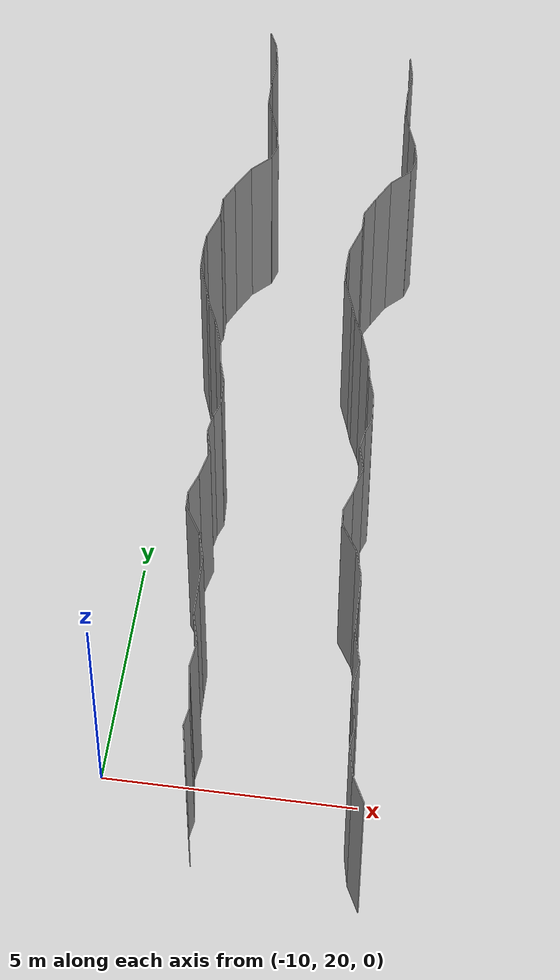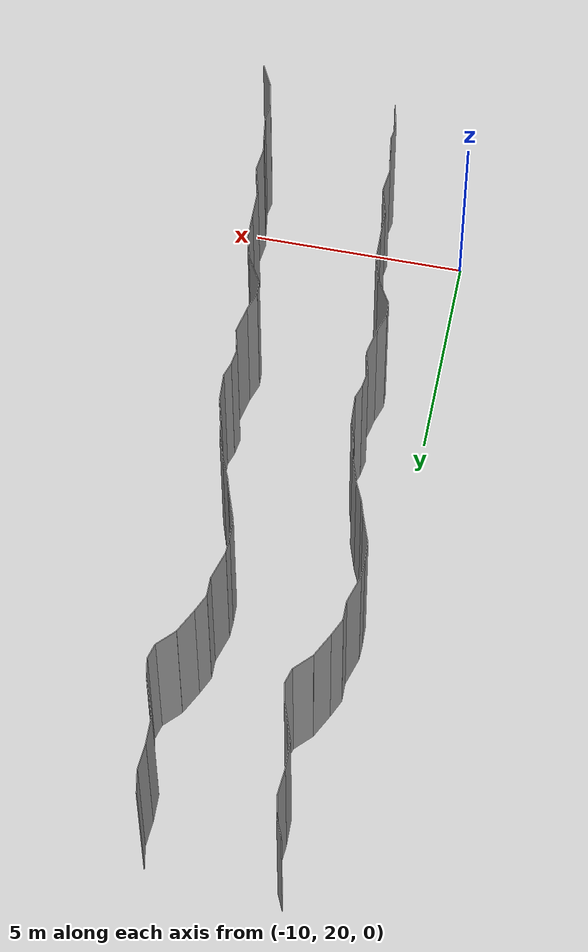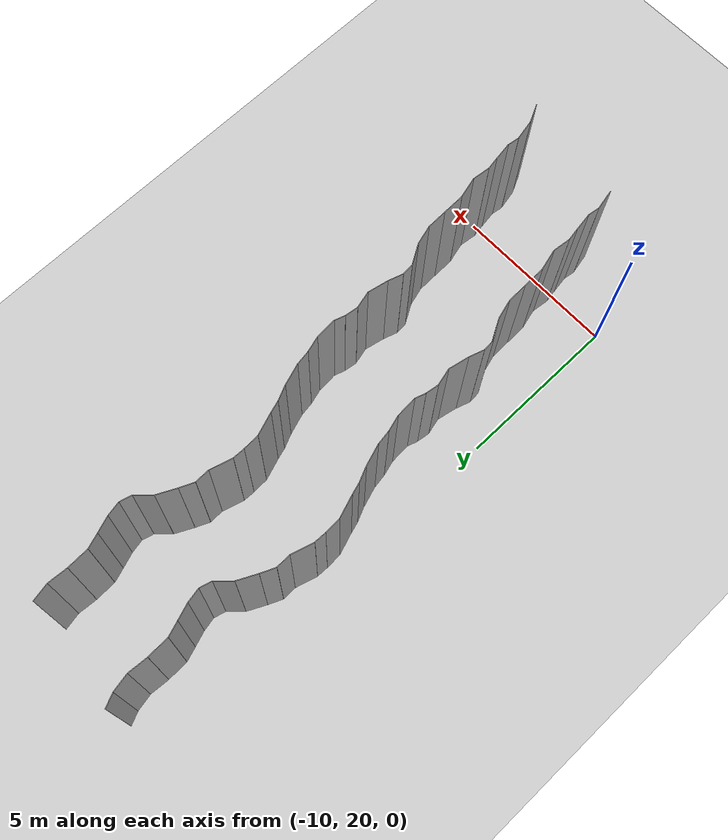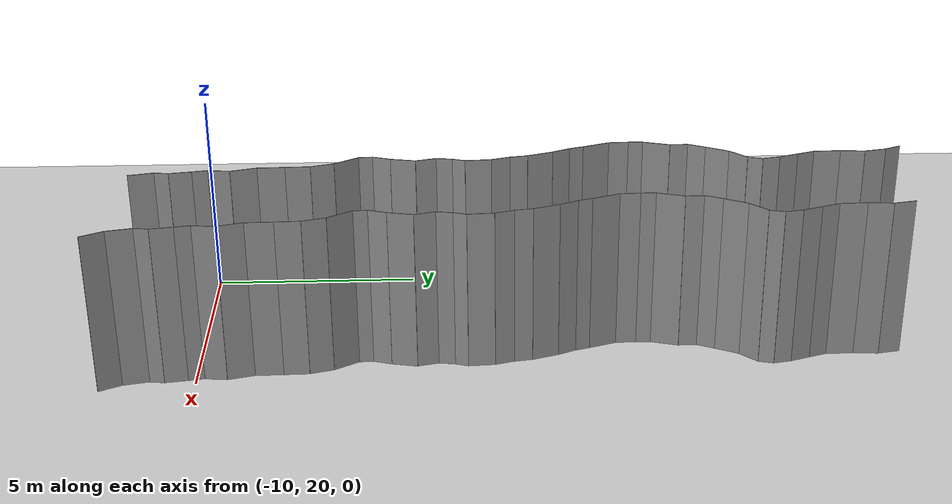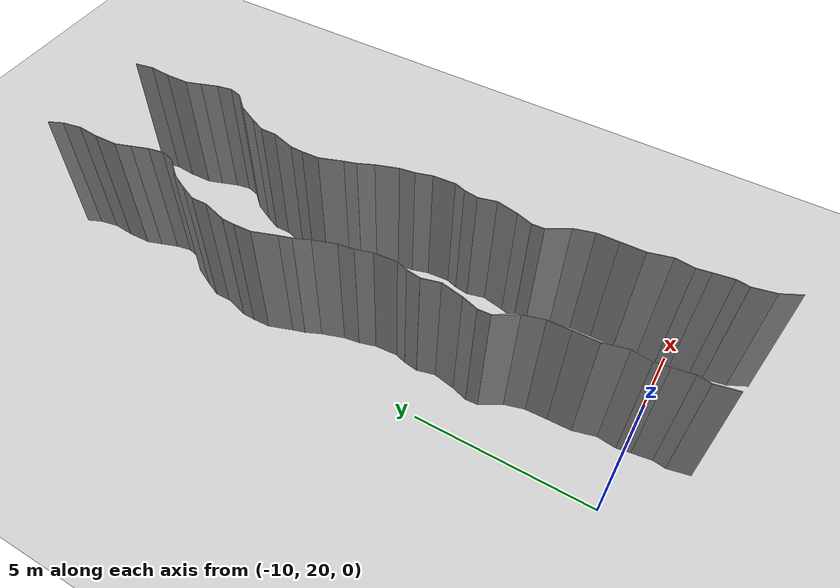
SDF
<sdf version="1.6">
 <world name="default">
  <model name="ground_plane">
   <static>1</static>
   <link name="link">
    <collision name="collision">
     <geometry><plane><normal>0 0 1</normal><size>200 200</size></plane></geometry>
     <surface><friction><ode><mu>100</mu><mu2>50</mu2></ode></friction></surface>
    </collision>
    <visual name="visual">
     <cast_shadows>0</cast_shadows>
     <geometry><plane><normal>0 0 1</normal><size>200 200</size></plane></geometry>
     <material>
      <script><uri>file://media/materials/scripts/gazebo.material</uri><name>Gazebo/Grey</name></script>
     </material>
    </visual>
   </link>
   <pose>0 100 0 0 -0 0</pose>
  </model>
  <model name="wall_73">
   <static>1</static>
   <pose>-4.859079595083798 18.051267998944404 2 0 0 0.46387960950541135</pose>
   <link name="link">
    <collision name="collision"><geometry><box><size>0.02 0.588464808912 4</size></box></geometry></collision>
    <visual name="visual">
     <material>
      <script><name>Gazebo/Grey</name><uri>file://media/materials/scripts/gazebo.material</uri></script>
     </material>
     <geometry><box><size>0.02 0.588464808912 4</size></box></geometry>
    </visual>
   </link>
  </model>
  <model name="wall_74">
   <static>1</static>
   <pose>-8.054942996099062 18.622079364378454 2 0 0 0.20576664837579636</pose>
   <link name="link">
    <collision name="collision"><geometry><box><size>0.02 0.628605539384 4</size></box></geometry></collision>
    <visual name="visual">
     <material>
      <script><name>Gazebo/Grey</name><uri>file://media/materials/scripts/gazebo.material</uri></script>
     </material>
     <geometry><box><size>0.02 0.628605539384 4</size></box></geometry>
    </visual>
   </link>
  </model>
  <model name="wall_75">
   <static>1</static>
   <pose>-5.0549429960990615 18.622079364378454 2 0 0 0.20576664837579636</pose>
   <link name="link">
    <collision name="collision"><geometry><box><size>0.02 0.628605539384 4</size></box></geometry></collision>
    <visual name="visual">
     <material>
      <script><name>Gazebo/Grey</name><uri>file://media/materials/scripts/gazebo.material</uri></script>
     </material>
     <geometry><box><size>0.02 0.628605539384 4</size></box></geometry>
    </visual>
   </link>
  </model>
  <model name="wall_76">
   <static>1</static>
   <pose>-8.094000291962661 19.10459928244877 2 0 0 -0.1429176120640637</pose>
   <link name="link">
    <collision name="collision"><geometry><box><size>0.02 0.3532969479 4</size></box></geometry></collision>
    <visual name="visual">
     <material>
      <script><name>Gazebo/Grey</name><uri>file://media/materials/scripts/gazebo.material</uri></script>
     </material>
     <geometry><box><size>0.02 0.3532969479 4</size></box></geometry>
    </visual>
   </link>
  </model>
  <model name="wall_77">
   <static>1</static>
   <pose>-5.0940002919626615 19.10459928244877 2 0 0 -0.1429176120640637</pose>
   <link name="link">
    <collision name="collision"><geometry><box><size>0.02 0.3532969479 4</size></box></geometry></collision>
    <visual name="visual">
     <material>
      <script><name>Gazebo/Grey</name><uri>file://media/materials/scripts/gazebo.material</uri></script>
     </material>
     <geometry><box><size>0.02 0.3532969479 4</size></box></geometry>
    </visual>
   </link>
  </model>
  <model name="wall_78">
   <static>1</static>
   <pose>-8.109329465776387 19.55113375653813 2 0 0 0.14794109622288584</pose>
   <link name="link">
    <collision name="collision"><geometry><box><size>0.02 0.549374995959 4</size></box></geometry></collision>
    <visual name="visual">
     <material>
      <script><name>Gazebo/Grey</name><uri>file://media/materials/scripts/gazebo.material</uri></script>
     </material>
     <geometry><box><size>0.02 0.549374995959 4</size></box></geometry>
    </visual>
   </link>
  </model>
  <model name="wall_79">
   <static>1</static>
   <pose>-5.109329465776387 19.55113375653813 2 0 0 0.14794109622288584</pose>
   <link name="link">
    <collision name="collision"><geometry><box><size>0.02 0.549374995959 4</size></box></geometry></collision>
    <visual name="visual">
     <material>
      <script><name>Gazebo/Grey</name><uri>file://media/materials/scripts/gazebo.material</uri></script>
     </material>
     <geometry><box><size>0.02 0.549374995959 4</size></box></geometry>
    </visual>
   </link>
  </model>
  <model name="wall_80">
   <static>1</static>
   <pose>-8.180743322352622 20.010506009818247 2 0 0 0.16329990901989272</pose>
   <link name="link">
    <collision name="collision"><geometry><box><size>0.02 0.38043171761 4</size></box></geometry></collision>
    <visual name="visual">
     <material>
      <script><name>Gazebo/Grey</name><uri>file://media/materials/scripts/gazebo.material</uri></script>
     </material>
     <geometry><box><size>0.02 0.38043171761 4</size></box></geometry>
    </visual>
   </link>
  </model>
  <model name="wall_81">
   <static>1</static>
   <pose>-5.1807433223526225 20.010506009818247 2 0 0 0.16329990901989272</pose>
   <link name="link">
    <collision name="collision"><geometry><box><size>0.02 0.38043171761 4</size></box></geometry></collision>
    <visual name="visual">
     <material>
      <script><name>Gazebo/Grey</name><uri>file://media/materials/scripts/gazebo.material</uri></script>
     </material>
     <geometry><box><size>0.02 0.38043171761 4</size></box></geometry>
    </visual>
   </link>
  </model>
  <model name="wall_82">
   <static>1</static>
   <pose>-8.181710078997972 20.464378614292592 2 0 0 -0.11207172929041374</pose>
   <link name="link">
    <collision name="collision"><geometry><box><size>0.02 0.535735607917 4</size></box></geometry></collision>
    <visual name="visual">
     <material>
      <script><name>Gazebo/Grey</name><uri>file://media/materials/scripts/gazebo.material</uri></script>
     </material>
     <geometry><box><size>0.02 0.535735607917 4</size></box></geometry>
    </visual>
   </link>
  </model>
  <model name="wall_83">
   <static>1</static>
   <pose>-5.1817100789979715 20.464378614292592 2 0 0 -0.11207172929041374</pose>
   <link name="link">
    <collision name="collision"><geometry><box><size>0.02 0.535735607917 4</size></box></geometry></collision>
    <visual name="visual">
     <material>
      <script><name>Gazebo/Grey</name><uri>file://media/materials/scripts/gazebo.material</uri></script>
     </material>
     <geometry><box><size>0.02 0.535735607917 4</size></box></geometry>
    </visual>
   </link>
  </model>
  <model name="wall_84">
   <static>1</static>
   <pose>-8.234010232352365 21.047139643242097 2 0 0 0.25421596916085887</pose>
   <link name="link">
    <collision name="collision"><geometry><box><size>0.02 0.654171954259 4</size></box></geometry></collision>
    <visual name="visual">
     <material>
      <script><name>Gazebo/Grey</name><uri>file://media/materials/scripts/gazebo.material</uri></script>
     </material>
     <geometry><box><size>0.02 0.654171954259 4</size></box></geometry>
    </visual>
   </link>
  </model>
  <model name="wall_85">
   <static>1</static>
   <pose>-5.2340102323523645 21.047139643242097 2 0 0 0.25421596916085887</pose>
   <link name="link">
    <collision name="collision"><geometry><box><size>0.02 0.654171954259 4</size></box></geometry></collision>
    <visual name="visual">
     <material>
      <script><name>Gazebo/Grey</name><uri>file://media/materials/scripts/gazebo.material</uri></script>
     </material>
     <geometry><box><size>0.02 0.654171954259 4</size></box></geometry>
    </visual>
   </link>
  </model>
  <model name="wall_86">
   <static>1</static>
   <pose>-8.322876717147118 21.69940661886569 2 0 0 0.01968425837181892</pose>
   <link name="link">
    <collision name="collision"><geometry><box><size>0.02 0.67151667431 4</size></box></geometry></collision>
    <visual name="visual">
     <material>
      <script><name>Gazebo/Grey</name><uri>file://media/materials/scripts/gazebo.material</uri></script>
     </material>
     <geometry><box><size>0.02 0.67151667431 4</size></box></geometry>
    </visual>
   </link>
  </model>
  <model name="wall_87">
   <static>1</static>
   <pose>-5.322876717147118 21.69940661886569 2 0 0 0.01968425837181892</pose>
   <link name="link">
    <collision name="collision"><geometry><box><size>0.02 0.67151667431 4</size></box></geometry></collision>
    <visual name="visual">
     <material>
      <script><name>Gazebo/Grey</name><uri>file://media/materials/scripts/gazebo.material</uri></script>
     </material>
     <geometry><box><size>0.02 0.67151667431 4</size></box></geometry>
    </visual>
   </link>
  </model>
  <model name="wall_88">
   <static>1</static>
   <pose>-8.337751136475987 22.338517524649152 2 0 0 0.027235229779851124</pose>
   <link name="link">
    <collision name="collision"><geometry><box><size>0.02 0.607060361293 4</size></box></geometry></collision>
    <visual name="visual">
     <material>
      <script><name>Gazebo/Grey</name><uri>file://media/materials/scripts/gazebo.material</uri></script>
     </material>
     <geometry><box><size>0.02 0.607060361293 4</size></box></geometry>
    </visual>
   </link>
  </model>
  <model name="wall_89">
   <static>1</static>
   <pose>-5.337751136475987 22.338517524649152 2 0 0 0.027235229779851124</pose>
   <link name="link">
    <collision name="collision"><geometry><box><size>0.02 0.607060361293 4</size></box></geometry></collision>
    <visual name="visual">
     <material>
      <script><name>Gazebo/Grey</name><uri>file://media/materials/scripts/gazebo.material</uri></script>
     </material>
     <geometry><box><size>0.02 0.607060361293 4</size></box></geometry>
    </visual>
   </link>
  </model>
  <model name="wall_90">
   <static>1</static>
   <pose>-8.423728312846686 22.921907207991158 2 0 0 0.2707527422141855</pose>
   <link name="link">
    <collision name="collision"><geometry><box><size>0.02 0.581114219393 4</size></box></geometry></collision>
    <visual name="visual">
     <material>
      <script><name>Gazebo/Grey</name><uri>file://media/materials/scripts/gazebo.material</uri></script>
     </material>
     <geometry><box><size>0.02 0.581114219393 4</size></box></geometry>
    </visual>
   </link>
  </model>
  <model name="wall_91">
   <static>1</static>
   <pose>-5.423728312846686 22.921907207991158 2 0 0 0.2707527422141855</pose>
   <link name="link">
    <collision name="collision"><geometry><box><size>0.02 0.581114219393 4</size></box></geometry></collision>
    <visual name="visual">
     <material>
      <script><name>Gazebo/Grey</name><uri>file://media/materials/scripts/gazebo.material</uri></script>
     </material>
     <geometry><box><size>0.02 0.581114219393 4</size></box></geometry>
    </visual>
   </link>
  </model>
  <model name="wall_92">
   <static>1</static>
   <pose>-8.67343939145242 23.492417907445667 2 0 0 0.5345182291013033</pose>
   <link name="link">
    <collision name="collision"><geometry><box><size>0.02 0.67526752177 4</size></box></geometry></collision>
    <visual name="visual">
     <material>
      <script><name>Gazebo/Grey</name><uri>file://media/materials/scripts/gazebo.material</uri></script>
     </material>
     <geometry><box><size>0.02 0.67526752177 4</size></box></geometry>
    </visual>
   </link>
  </model>
  <model name="wall_93">
   <static>1</static>
   <pose>-5.673439391452421 23.492417907445667 2 0 0 0.5345182291013033</pose>
   <link name="link">
    <collision name="collision"><geometry><box><size>0.02 0.67526752177 4</size></box></geometry></collision>
    <visual name="visual">
     <material>
      <script><name>Gazebo/Grey</name><uri>file://media/materials/scripts/gazebo.material</uri></script>
     </material>
     <geometry><box><size>0.02 0.67526752177 4</size></box></geometry>
    </visual>
   </link>
  </model>
  <model name="wall_94">
   <static>1</static>
   <pose>-8.855490961051897 23.954144507261333 2 0 0 0.058651587570294886</pose>
   <link name="link">
    <collision name="collision"><geometry><box><size>0.02 0.342965671422 4</size></box></geometry></collision>
    <visual name="visual">
     <material>
      <script><name>Gazebo/Grey</name><uri>file://media/materials/scripts/gazebo.material</uri></script>
     </material>
     <geometry><box><size>0.02 0.342965671422 4</size></box></geometry>
    </visual>
   </link>
  </model>
  <model name="wall_95">
   <static>1</static>
   <pose>-5.855490961051897 23.954144507261333 2 0 0 0.058651587570294886</pose>
   <link name="link">
    <collision name="collision"><geometry><box><size>0.02 0.342965671422 4</size></box></geometry></collision>
    <visual name="visual">
     <material>
      <script><name>Gazebo/Grey</name><uri>file://media/materials/scripts/gazebo.material</uri></script>
     </material>
     <geometry><box><size>0.02 0.342965671422 4</size></box></geometry>
    </visual>
   </link>
  </model>
  <model name="wall_96">
   <static>1</static>
   <pose>-8.795013583985359 24.344169792853876 2 0 0 -0.3117799793580367</pose>
   <link name="link">
    <collision name="collision"><geometry><box><size>0.02 0.459844150282 4</size></box></geometry></collision>
    <visual name="visual">
     <material>
      <script><name>Gazebo/Grey</name><uri>file://media/materials/scripts/gazebo.material</uri></script>
     </material>
     <geometry><box><size>0.02 0.459844150282 4</size></box></geometry>
    </visual>
   </link>
  </model>
  <model name="wall_97">
   <static>1</static>
   <pose>-5.795013583985359 24.344169792853876 2 0 0 -0.3117799793580367</pose>
   <link name="link">
    <collision name="collision"><geometry><box><size>0.02 0.459844150282 4</size></box></geometry></collision>
    <visual name="visual">
     <material>
      <script><name>Gazebo/Grey</name><uri>file://media/materials/scripts/gazebo.material</uri></script>
     </material>
     <geometry><box><size>0.02 0.459844150282 4</size></box></geometry>
    </visual>
   </link>
  </model>
  <model name="wall_98">
   <static>1</static>
   <pose>-8.662213755818472 24.869353204807805 2 0 0 -0.2005362531901241</pose>
   <link name="link">
    <collision name="collision"><geometry><box><size>0.02 0.625221696178 4</size></box></geometry></collision>
    <visual name="visual">
     <material>
      <script><name>Gazebo/Grey</name><uri>file://media/materials/scripts/gazebo.material</uri></script>
     </material>
     <geometry><box><size>0.02 0.625221696178 4</size></box></geometry>
    </visual>
   </link>
  </model>
  <model name="wall_99">
   <static>1</static>
   <pose>-5.662213755818472 24.869353204807805 2 0 0 -0.2005362531901241</pose>
   <link name="link">
    <collision name="collision"><geometry><box><size>0.02 0.625221696178 4</size></box></geometry></collision>
    <visual name="visual">
     <material>
      <script><name>Gazebo/Grey</name><uri>file://media/materials/scripts/gazebo.material</uri></script>
     </material>
     <geometry><box><size>0.02 0.625221696178 4</size></box></geometry>
    </visual>
   </link>
  </model>
  <model name="wall_100">
   <static>1</static>
   <pose>-8.662973331540597 25.427540380974918 2 0 0 0.24523943255387168</pose>
   <link name="link">
    <collision name="collision"><geometry><box><size>0.02 0.519217555126 4</size></box></geometry></collision>
    <visual name="visual">
     <material>
      <script><name>Gazebo/Grey</name><uri>file://media/materials/scripts/gazebo.material</uri></script>
     </material>
     <geometry><box><size>0.02 0.519217555126 4</size></box></geometry>
    </visual>
   </link>
  </model>
  <model name="wall_101">
   <static>1</static>
   <pose>-5.662973331540597 25.427540380974918 2 0 0 0.24523943255387168</pose>
   <link name="link">
    <collision name="collision"><geometry><box><size>0.02 0.519217555126 4</size></box></geometry></collision>
    <visual name="visual">
     <material>
      <script><name>Gazebo/Grey</name><uri>file://media/materials/scripts/gazebo.material</uri></script>
     </material>
     <geometry><box><size>0.02 0.519217555126 4</size></box></geometry>
    </visual>
   </link>
  </model>
  <model name="wall_102">
   <static>1</static>
   <pose>-8.698060151873593 25.87661070229261 2 0 0 -0.1407422340709729</pose>
   <link name="link">
    <collision name="collision"><geometry><box><size>0.02 0.398397778634 4</size></box></geometry></collision>
    <visual name="visual">
     <material>
      <script><name>Gazebo/Grey</name><uri>file://media/materials/scripts/gazebo.material</uri></script>
     </material>
     <geometry><box><size>0.02 0.398397778634 4</size></box></geometry>
    </visual>
   </link>
  </model>
  <model name="wall_103">
   <static>1</static>
   <pose>-5.698060151873593 25.87661070229261 2 0 0 -0.1407422340709729</pose>
   <link name="link">
    <collision name="collision"><geometry><box><size>0.02 0.398397778634 4</size></box></geometry></collision>
    <visual name="visual">
     <material>
      <script><name>Gazebo/Grey</name><uri>file://media/materials/scripts/gazebo.material</uri></script>
     </material>
     <geometry><box><size>0.02 0.398397778634 4</size></box></geometry>
    </visual>
   </link>
  </model>
  <model name="wall_104">
   <static>1</static>
   <pose>-8.619383325430157 26.228159763344518 2 0 0 -0.31762547752721315</pose>
   <link name="link">
    <collision name="collision"><geometry><box><size>0.02 0.324890779611 4</size></box></geometry></collision>
    <visual name="visual">
     <material>
      <script><name>Gazebo/Grey</name><uri>file://media/materials/scripts/gazebo.material</uri></script>
     </material>
     <geometry><box><size>0.02 0.324890779611 4</size></box></geometry>
    </visual>
   </link>
  </model>
  <model name="wall_105">
   <static>1</static>
   <pose>-5.619383325430157 26.228159763344518 2 0 0 -0.31762547752721315</pose>
   <link name="link">
    <collision name="collision"><geometry><box><size>0.02 0.324890779611 4</size></box></geometry></collision>
    <visual name="visual">
     <material>
      <script><name>Gazebo/Grey</name><uri>file://media/materials/scripts/gazebo.material</uri></script>
     </material>
     <geometry><box><size>0.02 0.324890779611 4</size></box></geometry>
    </visual>
   </link>
  </model>
  <model name="wall_106">
   <static>1</static>
   <pose>-8.588849817534083 26.701054927895868 2 0 0 0.06332279328560081</pose>
   <link name="link">
    <collision name="collision"><geometry><box><size>0.02 0.638430241612 4</size></box></geometry></collision>
    <visual name="visual">
     <material>
      <script><name>Gazebo/Grey</name><uri>file://media/materials/scripts/gazebo.material</uri></script>
     </material>
     <geometry><box><size>0.02 0.638430241612 4</size></box></geometry>
    </visual>
   </link>
  </model>
  <model name="wall_107">
   <static>1</static>
   <pose>-5.588849817534083 26.701054927895868 2 0 0 0.06332279328560081</pose>
   <link name="link">
    <collision name="collision"><geometry><box><size>0.02 0.638430241612 4</size></box></geometry></collision>
    <visual name="visual">
     <material>
      <script><name>Gazebo/Grey</name><uri>file://media/materials/scripts/gazebo.material</uri></script>
     </material>
     <geometry><box><size>0.02 0.638430241612 4</size></box></geometry>
    </visual>
   </link>
  </model>
  <model name="wall_108">
   <static>1</static>
   <pose>-8.67539472758073 27.251046630392246 2 0 0 0.2792017696800606</pose>
   <link name="link">
    <collision name="collision"><geometry><box><size>0.02 0.481477586128 4</size></box></geometry></collision>
    <visual name="visual">
     <material>
      <script><name>Gazebo/Grey</name><uri>file://media/materials/scripts/gazebo.material</uri></script>
     </material>
     <geometry><box><size>0.02 0.481477586128 4</size></box></geometry>
    </visual>
   </link>
  </model>
  <model name="wall_109">
   <static>1</static>
   <pose>-5.675394727580731 27.251046630392246 2 0 0 0.2792017696800606</pose>
   <link name="link">
    <collision name="collision"><geometry><box><size>0.02 0.481477586128 4</size></box></geometry></collision>
    <visual name="visual">
     <material>
      <script><name>Gazebo/Grey</name><uri>file://media/materials/scripts/gazebo.material</uri></script>
     </material>
     <geometry><box><size>0.02 0.481477586128 4</size></box></geometry>
    </visual>
   </link>
  </model>
  <model name="wall_110">
   <static>1</static>
   <pose>-8.774346465313783 27.698569106365476 2 0 0 0.14975419929686196</pose>
   <link name="link">
    <collision name="collision"><geometry><box><size>0.02 0.437104403655 4</size></box></geometry></collision>
    <visual name="visual">
     <material>
      <script><name>Gazebo/Grey</name><uri>file://media/materials/scripts/gazebo.material</uri></script>
     </material>
     <geometry><box><size>0.02 0.437104403655 4</size></box></geometry>
    </visual>
   </link>
  </model>
  <model name="wall_111">
   <static>1</static>
   <pose>-5.7743464653137835 27.698569106365476 2 0 0 0.14975419929686196</pose>
   <link name="link">
    <collision name="collision"><geometry><box><size>0.02 0.437104403655 4</size></box></geometry></collision>
    <visual name="visual">
     <material>
      <script><name>Gazebo/Grey</name><uri>file://media/materials/scripts/gazebo.material</uri></script>
     </material>
     <geometry><box><size>0.02 0.437104403655 4</size></box></geometry>
    </visual>
   </link>
  </model>
  <model name="wall_112">
   <static>1</static>
   <pose>-8.910186300853661 28.227636342037194 2 0 0 0.31862005401709687</pose>
   <link name="link">
    <collision name="collision"><geometry><box><size>0.02 0.659095432826 4</size></box></geometry></collision>
    <visual name="visual">
     <material>
      <script><name>Gazebo/Grey</name><uri>file://media/materials/scripts/gazebo.material</uri></script>
     </material>
     <geometry><box><size>0.02 0.659095432826 4</size></box></geometry>
    </visual>
   </link>
  </model>
  <model name="wall_113">
   <static>1</static>
   <pose>-5.9101863008536615 28.227636342037194 2 0 0 0.31862005401709687</pose>
   <link name="link">
    <collision name="collision"><geometry><box><size>0.02 0.659095432826 4</size></box></geometry></collision>
    <visual name="visual">
     <material>
      <script><name>Gazebo/Grey</name><uri>file://media/materials/scripts/gazebo.material</uri></script>
     </material>
     <geometry><box><size>0.02 0.659095432826 4</size></box></geometry>
    </visual>
   </link>
  </model>
  <model name="wall_114">
   <static>1</static>
   <pose>-9.108810508363867 28.755832845389186 2 0 0 0.41718065177333513</pose>
   <link name="link">
    <collision name="collision"><geometry><box><size>0.02 0.470853559571 4</size></box></geometry></collision>
    <visual name="visual">
     <material>
      <script><name>Gazebo/Grey</name><uri>file://media/materials/scripts/gazebo.material</uri></script>
     </material>
     <geometry><box><size>0.02 0.470853559571 4</size></box></geometry>
    </visual>
   </link>
  </model>
  <model name="wall_115">
   <static>1</static>
   <pose>-6.108810508363867 28.755832845389186 2 0 0 0.41718065177333513</pose>
   <link name="link">
    <collision name="collision"><geometry><box><size>0.02 0.470853559571 4</size></box></geometry></collision>
    <visual name="visual">
     <material>
      <script><name>Gazebo/Grey</name><uri>file://media/materials/scripts/gazebo.material</uri></script>
     </material>
     <geometry><box><size>0.02 0.470853559571 4</size></box></geometry>
    </visual>
   </link>
  </model>
  <model name="wall_116">
   <static>1</static>
   <pose>-9.255978854493865 29.141375278159774 2 0 0 0.2951424452407064</pose>
   <link name="link">
    <collision name="collision"><geometry><box><size>0.02 0.356007608486 4</size></box></geometry></collision>
    <visual name="visual">
     <material>
      <script><name>Gazebo/Grey</name><uri>file://media/materials/scripts/gazebo.material</uri></script>
     </material>
     <geometry><box><size>0.02 0.356007608486 4</size></box></geometry>
    </visual>
   </link>
  </model>
  <model name="wall_117">
   <static>1</static>
   <pose>-6.255978854493865 29.141375278159774 2 0 0 0.2951424452407064</pose>
   <link name="link">
    <collision name="collision"><geometry><box><size>0.02 0.356007608486 4</size></box></geometry></collision>
    <visual name="visual">
     <material>
      <script><name>Gazebo/Grey</name><uri>file://media/materials/scripts/gazebo.material</uri></script>
     </material>
     <geometry><box><size>0.02 0.356007608486 4</size></box></geometry>
    </visual>
   </link>
  </model>
  <model name="wall_118">
   <static>1</static>
   <pose>-9.421844794385015 29.640643972283648 2 0 0 0.3338347177805373</pose>
   <link name="link">
    <collision name="collision"><geometry><box><size>0.02 0.696367826859 4</size></box></geometry></collision>
    <visual name="visual">
     <material>
      <script><name>Gazebo/Grey</name><uri>file://media/materials/scripts/gazebo.material</uri></script>
     </material>
     <geometry><box><size>0.02 0.696367826859 4</size></box></geometry>
    </visual>
   </link>
  </model>
  <model name="wall_119">
   <static>1</static>
   <pose>-6.421844794385015 29.640643972283648 2 0 0 0.3338347177805373</pose>
   <link name="link">
    <collision name="collision"><geometry><box><size>0.02 0.696367826859 4</size></box></geometry></collision>
    <visual name="visual">
     <material>
      <script><name>Gazebo/Grey</name><uri>file://media/materials/scripts/gazebo.material</uri></script>
     </material>
     <geometry><box><size>0.02 0.696367826859 4</size></box></geometry>
    </visual>
   </link>
  </model>
  <model name="wall_120">
   <static>1</static>
   <pose>-9.546069613352834 30.21606823417161 2 0 0 0.04110250069015482</pose>
   <link name="link">
    <collision name="collision"><geometry><box><size>0.02 0.493341901752 4</size></box></geometry></collision>
    <visual name="visual">
     <material>
      <script><name>Gazebo/Grey</name><uri>file://media/materials/scripts/gazebo.material</uri></script>
     </material>
     <geometry><box><size>0.02 0.493341901752 4</size></box></geometry>
    </visual>
   </link>
  </model>
  <model name="wall_121">
   <static>1</static>
   <pose>-6.546069613352834 30.21606823417161 2 0 0 0.04110250069015482</pose>
   <link name="link">
    <collision name="collision"><geometry><box><size>0.02 0.493341901752 4</size></box></geometry></collision>
    <visual name="visual">
     <material>
      <script><name>Gazebo/Grey</name><uri>file://media/materials/scripts/gazebo.material</uri></script>
     </material>
     <geometry><box><size>0.02 0.493341901752 4</size></box></geometry>
    </visual>
   </link>
  </model>
  <model name="wall_122">
   <static>1</static>
   <pose>-9.551170730364428 30.64214255840843 2 0 0 -0.028024360385189427</pose>
   <link name="link">
    <collision name="collision"><geometry><box><size>0.02 0.359364524683 4</size></box></geometry></collision>
    <visual name="visual">
     <material>
      <script><name>Gazebo/Grey</name><uri>file://media/materials/scripts/gazebo.material</uri></script>
     </material>
     <geometry><box><size>0.02 0.359364524683 4</size></box></geometry>
    </visual>
   </link>
  </model>
  <model name="wall_123">
   <static>1</static>
   <pose>-6.5511707303644275 30.64214255840843 2 0 0 -0.028024360385189427</pose>
   <link name="link">
    <collision name="collision"><geometry><box><size>0.02 0.359364524683 4</size></box></geometry></collision>
    <visual name="visual">
     <material>
      <script><name>Gazebo/Grey</name><uri>file://media/materials/scripts/gazebo.material</uri></script>
     </material>
     <geometry><box><size>0.02 0.359364524683 4</size></box></geometry>
    </visual>
   </link>
  </model>
  <model name="wall_124">
   <static>1</static>
   <pose>-9.450103116554448 31.151722707457882 2 0 0 -0.28321306067072094</pose>
   <link name="link">
    <collision name="collision"><geometry><box><size>0.02 0.687317884871 4</size></box></geometry></collision>
    <visual name="visual">
     <material>
      <script><name>Gazebo/Grey</name><uri>file://media/materials/scripts/gazebo.material</uri></script>
     </material>
     <geometry><box><size>0.02 0.687317884871 4</size></box></geometry>
    </visual>
   </link>
  </model>
  <model name="wall_125">
   <static>1</static>
   <pose>-6.450103116554448 31.151722707457882 2 0 0 -0.28321306067072094</pose>
   <link name="link">
    <collision name="collision"><geometry><box><size>0.02 0.687317884871 4</size></box></geometry></collision>
    <visual name="visual">
     <material>
      <script><name>Gazebo/Grey</name><uri>file://media/materials/scripts/gazebo.material</uri></script>
     </material>
     <geometry><box><size>0.02 0.687317884871 4</size></box></geometry>
    </visual>
   </link>
  </model>
  <model name="wall_126">
   <static>1</static>
   <pose>-9.358234556233942 31.703728972410243 2 0 0 0.0187524084001368</pose>
   <link name="link">
    <collision name="collision"><geometry><box><size>0.02 0.444153741274 4</size></box></geometry></collision>
    <visual name="visual">
     <material>
      <script><name>Gazebo/Grey</name><uri>file://media/materials/scripts/gazebo.material</uri></script>
     </material>
     <geometry><box><size>0.02 0.444153741274 4</size></box></geometry>
    </visual>
   </link>
  </model>
  <model name="wall_127">
   <static>1</static>
   <pose>-6.358234556233942 31.703728972410243 2 0 0 0.0187524084001368</pose>
   <link name="link">
    <collision name="collision"><geometry><box><size>0.02 0.444153741274 4</size></box></geometry></collision>
    <visual name="visual">
     <material>
      <script><name>Gazebo/Grey</name><uri>file://media/materials/scripts/gazebo.material</uri></script>
     </material>
     <geometry><box><size>0.02 0.444153741274 4</size></box></geometry>
    </visual>
   </link>
  </model>
  <model name="wall_128">
   <static>1</static>
   <pose>-9.269986439868436 32.134383766315665 2 0 0 -0.41699758687262956</pose>
   <link name="link">
    <collision name="collision"><geometry><box><size>0.02 0.456337953483 4</size></box></geometry></collision>
    <visual name="visual">
     <material>
      <script><name>Gazebo/Grey</name><uri>file://media/materials/scripts/gazebo.material</uri></script>
     </material>
     <geometry><box><size>0.02 0.456337953483 4</size></box></geometry>
    </visual>
   </link>
  </model>
  <model name="wall_129">
   <static>1</static>
   <pose>-6.269986439868436 32.134383766315665 2 0 0 -0.41699758687262956</pose>
   <link name="link">
    <collision name="collision"><geometry><box><size>0.02 0.456337953483 4</size></box></geometry></collision>
    <visual name="visual">
     <material>
      <script><name>Gazebo/Grey</name><uri>file://media/materials/scripts/gazebo.material</uri></script>
     </material>
     <geometry><box><size>0.02 0.456337953483 4</size></box></geometry>
    </visual>
   </link>
  </model>
  <model name="wall_130">
   <static>1</static>
   <pose>-9.040357690940686 32.618915423603376 2 0 0 -0.4614969754248214</pose>
   <link name="link">
    <collision name="collision"><geometry><box><size>0.02 0.616302703907 4</size></box></geometry></collision>
    <visual name="visual">
     <material>
      <script><name>Gazebo/Grey</name><uri>file://media/materials/scripts/gazebo.material</uri></script>
     </material>
     <geometry><box><size>0.02 0.616302703907 4</size></box></geometry>
    </visual>
   </link>
  </model>
  <model name="wall_131">
   <static>1</static>
   <pose>-6.040357690940686 32.618915423603376 2 0 0 -0.4614969754248214</pose>
   <link name="link">
    <collision name="collision"><geometry><box><size>0.02 0.616302703907 4</size></box></geometry></collision>
    <visual name="visual">
     <material>
      <script><name>Gazebo/Grey</name><uri>file://media/materials/scripts/gazebo.material</uri></script>
     </material>
     <geometry><box><size>0.02 0.616302703907 4</size></box></geometry>
    </visual>
   </link>
  </model>
  <model name="wall_132">
   <static>1</static>
   <pose>-8.713713766094742 33.09432942578418 2 0 0 -0.7595075894706407</pose>
   <link name="link">
    <collision name="collision"><geometry><box><size>0.02 0.550210008199 4</size></box></geometry></collision>
    <visual name="visual">
     <material>
      <script><name>Gazebo/Grey</name><uri>file://media/materials/scripts/gazebo.material</uri></script>
     </material>
     <geometry><box><size>0.02 0.550210008199 4</size></box></geometry>
    </visual>
   </link>
  </model>
  <model name="wall_133">
   <static>1</static>
   <pose>-5.713713766094742 33.09432942578418 2 0 0 -0.7595075894706407</pose>
   <link name="link">
    <collision name="collision"><geometry><box><size>0.02 0.550210008199 4</size></box></geometry></collision>
    <visual name="visual">
     <material>
      <script><name>Gazebo/Grey</name><uri>file://media/materials/scripts/gazebo.material</uri></script>
     </material>
     <geometry><box><size>0.02 0.550210008199 4</size></box></geometry>
    </visual>
   </link>
  </model>
  <model name="wall_134">
   <static>1</static>
   <pose>-8.476575319647639 33.47242971253906 2 0 0 -0.26104141683359366</pose>
   <link name="link">
    <collision name="collision"><geometry><box><size>0.02 0.369727681161 4</size></box></geometry></collision>
    <visual name="visual">
     <material>
      <script><name>Gazebo/Grey</name><uri>file://media/materials/scripts/gazebo.material</uri></script>
     </material>
     <geometry><box><size>0.02 0.369727681161 4</size></box></geometry>
    </visual>
   </link>
  </model>
  <model name="wall_135">
   <static>1</static>
   <pose>-5.4765753196476386 33.47242971253906 2 0 0 -0.26104141683359366</pose>
   <link name="link">
    <collision name="collision"><geometry><box><size>0.02 0.369727681161 4</size></box></geometry></collision>
    <visual name="visual">
     <material>
      <script><name>Gazebo/Grey</name><uri>file://media/materials/scripts/gazebo.material</uri></script>
     </material>
     <geometry><box><size>0.02 0.369727681161 4</size></box></geometry>
    </visual>
   </link>
  </model>
  <model name="wall_136">
   <static>1</static>
   <pose>-8.469824106145936 33.864018736795686 2 0 0 0.18999040634160372</pose>
   <link name="link">
    <collision name="collision"><geometry><box><size>0.02 0.433781547814 4</size></box></geometry></collision>
    <visual name="visual">
     <material>
      <script><name>Gazebo/Grey</name><uri>file://media/materials/scripts/gazebo.material</uri></script>
     </material>
     <geometry><box><size>0.02 0.433781547814 4</size></box></geometry>
    </visual>
   </link>
  </model>
  <model name="wall_137">
   <static>1</static>
   <pose>-5.469824106145936 33.864018736795686 2 0 0 0.18999040634160372</pose>
   <link name="link">
    <collision name="collision"><geometry><box><size>0.02 0.433781547814 4</size></box></geometry></collision>
    <visual name="visual">
     <material>
      <script><name>Gazebo/Grey</name><uri>file://media/materials/scripts/gazebo.material</uri></script>
     </material>
     <geometry><box><size>0.02 0.433781547814 4</size></box></geometry>
    </visual>
   </link>
  </model>
  <model name="wall_138">
   <static>1</static>
   <pose>-8.592060693162544 34.3118583063855 2 0 0 0.3331763210061817</pose>
   <link name="link">
    <collision name="collision"><geometry><box><size>0.02 0.497035880082 4</size></box></geometry></collision>
    <visual name="visual">
     <material>
      <script><name>Gazebo/Grey</name><uri>file://media/materials/scripts/gazebo.material</uri></script>
     </material>
     <geometry><box><size>0.02 0.497035880082 4</size></box></geometry>
    </visual>
   </link>
  </model>
  <model name="wall_139">
   <static>1</static>
   <pose>-5.592060693162544 34.3118583063855 2 0 0 0.3331763210061817</pose>
   <link name="link">
    <collision name="collision"><geometry><box><size>0.02 0.497035880082 4</size></box></geometry></collision>
    <visual name="visual">
     <material>
      <script><name>Gazebo/Grey</name><uri>file://media/materials/scripts/gazebo.material</uri></script>
     </material>
     <geometry><box><size>0.02 0.497035880082 4</size></box></geometry>
    </visual>
   </link>
  </model>
  <model name="wall_140">
   <static>1</static>
   <pose>-8.745602509139616 34.760809780680084 2 0 0 0.3255218618462445</pose>
   <link name="link">
    <collision name="collision"><geometry><box><size>0.02 0.451933678499 4</size></box></geometry></collision>
    <visual name="visual">
     <material>
      <script><name>Gazebo/Grey</name><uri>file://media/materials/scripts/gazebo.material</uri></script>
     </material>
     <geometry><box><size>0.02 0.451933678499 4</size></box></geometry>
    </visual>
   </link>
  </model>
  <model name="wall_141">
   <static>1</static>
   <pose>-5.745602509139616 34.760809780680084 2 0 0 0.3255218618462445</pose>
   <link name="link">
    <collision name="collision"><geometry><box><size>0.02 0.451933678499 4</size></box></geometry></collision>
    <visual name="visual">
     <material>
      <script><name>Gazebo/Grey</name><uri>file://media/materials/scripts/gazebo.material</uri></script>
     </material>
     <geometry><box><size>0.02 0.451933678499 4</size></box></geometry>
    </visual>
   </link>
  </model>
  <model name="wall_142">
   <static>1</static>
   <pose>-8.827189205667034 35.30686925086344 2 0 0 0.028073634198819843</pose>
   <link name="link">
    <collision name="collision"><geometry><box><size>0.02 0.664180740803 4</size></box></geometry></collision>
    <visual name="visual">
     <material>
      <script><name>Gazebo/Grey</name><uri>file://media/materials/scripts/gazebo.material</uri></script>
     </material>
     <geometry><box><size>0.02 0.664180740803 4</size></box></geometry>
    </visual>
   </link>
  </model>
  <model name="wall_143">
   <static>1</static>
   <pose>-5.827189205667034 35.30686925086344 2 0 0 0.028073634198819843</pose>
   <link name="link">
    <collision name="collision"><geometry><box><size>0.02 0.664180740803 4</size></box></geometry></collision>
    <visual name="visual">
     <material>
      <script><name>Gazebo/Grey</name><uri>file://media/materials/scripts/gazebo.material</uri></script>
     </material>
     <geometry><box><size>0.02 0.664180740803 4</size></box></geometry>
    </visual>
   </link>
  </model>
  <model name="wall_144">
   <static>1</static>
   <pose>-8.813819058170209 35.939568339981776 2 0 0 -0.07531097090528052</pose>
   <link name="link">
    <collision name="collision"><geometry><box><size>0.02 0.603188907971 4</size></box></geometry></collision>
    <visual name="visual">
     <material>
      <script><name>Gazebo/Grey</name><uri>file://media/materials/scripts/gazebo.material</uri></script>
     </material>
     <geometry><box><size>0.02 0.603188907971 4</size></box></geometry>
    </visual>
   </link>
  </model>
  <model name="wall_145">
   <static>1</static>
   <pose>-5.813819058170209 35.939568339981776 2 0 0 -0.07531097090528052</pose>
   <link name="link">
    <collision name="collision"><geometry><box><size>0.02 0.603188907971 4</size></box></geometry></collision>
    <visual name="visual">
     <material>
      <script><name>Gazebo/Grey</name><uri>file://media/materials/scripts/gazebo.material</uri></script>
     </material>
     <geometry><box><size>0.02 0.603188907971 4</size></box></geometry>
    </visual>
   </link>
  </model>
  <model name="wall_146">
   <static>1</static>
   <pose>-8.842007956791907 36.506992560476625 2 0 0 0.188524461241438</pose>
   <link name="link">
    <collision name="collision"><geometry><box><size>0.02 0.54299007873 4</size></box></geometry></collision>
    <visual name="visual">
     <material>
      <script><name>Gazebo/Grey</name><uri>file://media/materials/scripts/gazebo.material</uri></script>
     </material>
     <geometry><box><size>0.02 0.54299007873 4</size></box></geometry>
    </visual>
   </link>
  </model>
  <model name="wall_147">
   <static>1</static>
   <pose>-5.842007956791907 36.506992560476625 2 0 0 0.188524461241438</pose>
   <link name="link">
    <collision name="collision"><geometry><box><size>0.02 0.54299007873 4</size></box></geometry></collision>
    <visual name="visual">
     <material>
      <script><name>Gazebo/Grey</name><uri>file://media/materials/scripts/gazebo.material</uri></script>
     </material>
     <geometry><box><size>0.02 0.54299007873 4</size></box></geometry>
    </visual>
   </link>
  </model>
  <model name="wall_148">
   <static>1</static>
   <pose>-8.979179297973749 36.96900486577157 2 0 0 0.4159915385988741</pose>
   <link name="link">
    <collision name="collision"><geometry><box><size>0.02 0.427078219296 4</size></box></geometry></collision>
    <visual name="visual">
     <material>
      <script><name>Gazebo/Grey</name><uri>file://media/materials/scripts/gazebo.material</uri></script>
     </material>
     <geometry><box><size>0.02 0.427078219296 4</size></box></geometry>
    </visual>
   </link>
  </model>
 </world>
</sdf>
